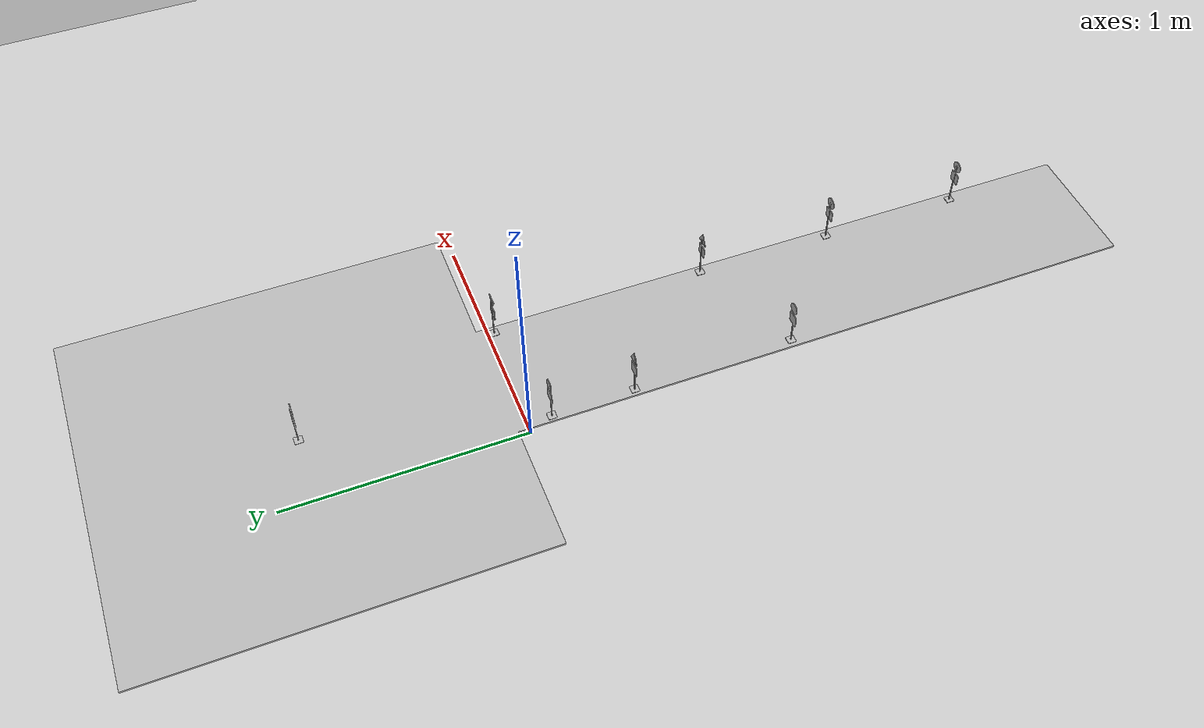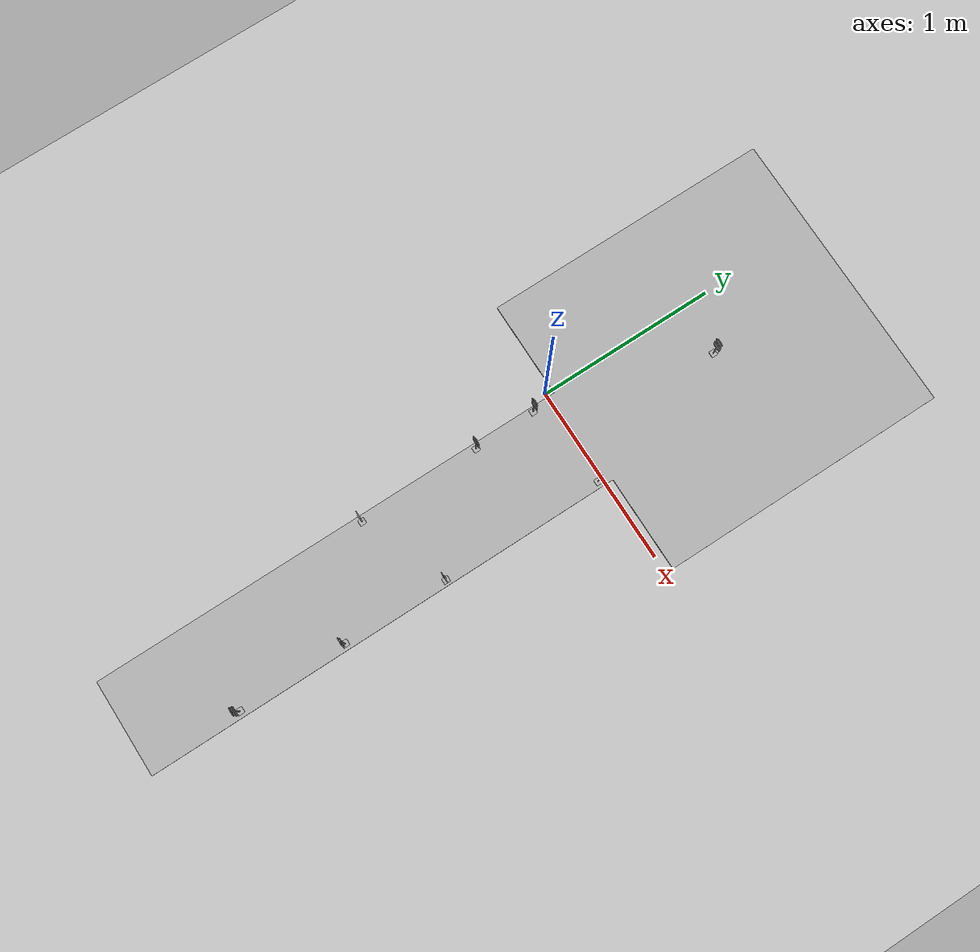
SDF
<sdf version="1.6">
 <world name="default">
  <light name="sun" type="directional">
   <pose>0 0 10 0 -0 0</pose>
   <diffuse>0.8 0.8 0.8 1</diffuse>
   <specular>0.1 0.1 0.1 1</specular>
   <attenuation>
    <range>1000</range>
    <constant>0.9</constant>
    <linear>0.01</linear>
    <quadratic>0.001</quadratic>
   </attenuation>
   <direction>-0.5 0.5 -1</direction>
  </light>
  <model name="ground_plane">
   <static>1</static>
   <link name="link">
    <collision name="collision">
     <geometry><plane><normal>0 0 1</normal><size>100 100</size></plane></geometry>
     <surface><friction><ode><mu>100</mu><mu2>50</mu2></ode></friction></surface>
    </collision>
    <visual name="visual">
     <cast_shadows>0</cast_shadows>
     <geometry><plane><normal>0 0 1</normal><size>100 100</size></plane></geometry>
     <material>
      <script><uri>file://media/materials/scripts/gazebo.material</uri><name>Gazebo/Grey</name></script>
     </material>
    </visual>
   </link>
  </model>
  <gravity>0 0 -9.8</gravity>
  <magnetic_field>6e-06 2.3e-05 -4.2e-05</magnetic_field>
  <atmosphere type="adiabatic"/>
  <physics name="default_physics" default="0" type="ode">
   <max_step_size>0.001</max_step_size>
   <real_time_factor>1</real_time_factor>
   <real_time_update_rate>1000</real_time_update_rate>
  </physics>
  <scene><ambient>0.4 0.4 0.4 1</ambient><background>0.7 0.7 0.7 1</background><shadows>1</shadows></scene>
  <spherical_coordinates>
   <surface_model>EARTH_WGS84</surface_model>
   <latitude_deg>0</latitude_deg>
   <longitude_deg>0</longitude_deg>
   <elevation>0</elevation>
   <heading_deg>0</heading_deg>
  </spherical_coordinates>
  <model name="city_0">
   <pose>0.341481 -0.258466 -3.7e-05 -1.2e-05 6.9e-05 -0.001334</pose>
   <link name="city::link_0">
    <inertial>
     <mass>5</mass>
     <inertia>
      <ixx>0.166667</ixx>
      <ixy>0</ixy>
      <ixz>0</ixz>
      <iyy>0.166667</iyy>
      <iyz>0</iyz>
      <izz>0.166667</izz>
     </inertia>
    </inertial>
    <visual name="visual">
     <geometry><mesh><uri>file://models/stl/City/city.dae</uri><scale>1 1 1</scale></mesh></geometry>
     <material><shader type="vertex"><normal_map>__default__</normal_map></shader></material>
    </visual>
    <collision name="collision_1">
     <pose>-0.06 -1.05 0 0 -0 0</pose>
     <geometry><box><size>0.54 2.71 0.01</size></box></geometry>
     <surface>
      <friction>
       <ode><mu>1</mu><mu2>1</mu2><fdir1>0 0 0</fdir1><slip1>0</slip1><slip2>0</slip2></ode>
       <torsional>
        <coefficient>1</coefficient>
        <patch_radius>0</patch_radius>
        <surface_radius>0</surface_radius>
        <use_patch_radius>1</use_patch_radius>
        <ode><slip>0</slip></ode>
       </torsional>
      </friction>
      <bounce><restitution_coefficient>0</restitution_coefficient><threshold>1e+06</threshold></bounce>
      <contact>
       <collide_without_contact>0</collide_without_contact>
       <collide_without_contact_bitmask>1</collide_without_contact_bitmask>
       <collide_bitmask>1</collide_bitmask>
       <ode>
        <soft_cfm>0</soft_cfm>
        <soft_erp>0.2</soft_erp>
        <kp>1e+13</kp>
        <kd>1</kd>
        <max_vel>0.01</max_vel>
        <min_depth>0</min_depth>
       </ode>
       <bullet>
        <split_impulse>1</split_impulse>
        <split_impulse_penetration_threshold>-0.01</split_impulse_penetration_threshold>
        <soft_cfm>0</soft_cfm>
        <soft_erp>0.2</soft_erp>
        <kp>1e+13</kp>
        <kd>1</kd>
       </bullet>
      </contact>
     </surface>
    </collision>
    <collision name="collision">
     <pose>-0.06 1.11 0 0 -0 0</pose>
     <geometry><box><size>1.62 1.62 0.01</size></box></geometry>
     <surface>
      <friction>
       <ode><mu>1</mu><mu2>1</mu2><fdir1>0 0 0</fdir1><slip1>0</slip1><slip2>0</slip2></ode>
       <torsional>
        <coefficient>1</coefficient>
        <patch_radius>0</patch_radius>
        <surface_radius>0</surface_radius>
        <use_patch_radius>1</use_patch_radius>
        <ode><slip>0</slip></ode>
       </torsional>
      </friction>
      <bounce><restitution_coefficient>0</restitution_coefficient><threshold>1e+06</threshold></bounce>
      <contact>
       <collide_without_contact>0</collide_without_contact>
       <collide_without_contact_bitmask>1</collide_without_contact_bitmask>
       <collide_bitmask>1</collide_bitmask>
       <ode>
        <soft_cfm>0</soft_cfm>
        <soft_erp>0.2</soft_erp>
        <kp>1e+13</kp>
        <kd>1</kd>
        <max_vel>0.01</max_vel>
        <min_depth>0</min_depth>
       </ode>
       <bullet>
        <split_impulse>1</split_impulse>
        <split_impulse_penetration_threshold>-0.01</split_impulse_penetration_threshold>
        <soft_cfm>0</soft_cfm>
        <soft_erp>0.2</soft_erp>
        <kp>1e+13</kp>
        <kd>1</kd>
       </bullet>
      </contact>
     </surface>
    </collision>
   </link>
   <static>1</static>
  </model>
  <model name="velocidad40_aruco">
   <link name="link_22">
    <inertial>
     <mass>0.02</mass>
     <inertia>
      <ixx>0.166667</ixx>
      <ixy>0</ixy>
      <ixz>0</ixz>
      <iyy>0.166667</iyy>
      <iyz>0</iyz>
      <izz>0.166667</izz>
     </inertia>
    </inertial>
    <visual name="visual">
     <geometry>
      <mesh><uri>file://models/stl/SENALES_ARUCOS/VELOCIDAD40/velo40_aruco.dae</uri><scale>1 1 1</scale></mesh>
     </geometry>
    </visual>
    <collision name="collision">
     <geometry>
      <mesh><uri>file://models/stl/SENALES_ARUCOS/VELOCIDAD40/velo40_aruco.dae</uri><scale>1 1 1</scale></mesh>
     </geometry>
     <surface>
      <friction>
       <ode><mu>1</mu><mu2>1</mu2><fdir1>0 0 0</fdir1><slip1>0</slip1><slip2>0</slip2></ode>
       <torsional>
        <coefficient>1</coefficient>
        <patch_radius>0</patch_radius>
        <surface_radius>0</surface_radius>
        <use_patch_radius>1</use_patch_radius>
        <ode><slip>0</slip></ode>
       </torsional>
      </friction>
      <bounce><restitution_coefficient>0</restitution_coefficient><threshold>1e+06</threshold></bounce>
      <contact>
       <collide_without_contact>0</collide_without_contact>
       <collide_without_contact_bitmask>1</collide_without_contact_bitmask>
       <collide_bitmask>1</collide_bitmask>
       <ode>
        <soft_cfm>0</soft_cfm>
        <soft_erp>0.2</soft_erp>
        <kp>1e+13</kp>
        <kd>1</kd>
        <max_vel>0.01</max_vel>
        <min_depth>0</min_depth>
       </ode>
       <bullet>
        <split_impulse>1</split_impulse>
        <split_impulse_penetration_threshold>-0.01</split_impulse_penetration_threshold>
        <soft_cfm>0</soft_cfm>
        <soft_erp>0.2</soft_erp>
        <kp>1e+13</kp>
        <kd>1</kd>
       </bullet>
      </contact>
     </surface>
    </collision>
   </link>
   <static>0</static>
   <pose>0.521753 -2.13682 0.004984 -4e-06 6.9e-05 -0</pose>
  </model>
  <model name="peatones_aruco">
   <link name="link_15">
    <inertial>
     <mass>0.02</mass>
     <inertia>
      <ixx>0.166667</ixx>
      <ixy>0</ixy>
      <ixz>0</ixz>
      <iyy>0.166667</iyy>
      <iyz>0</iyz>
      <izz>0.166667</izz>
     </inertia>
    </inertial>
    <visual name="visual">
     <geometry>
      <mesh><uri>file://models/stl/SENALES_ARUCOS/PEATONES/peatones_aruco.dae</uri><scale>1 1 1</scale></mesh>
     </geometry>
    </visual>
    <collision name="collision">
     <geometry>
      <mesh><uri>file://models/stl/SENALES_ARUCOS/PEATONES/peatones_aruco.dae</uri><scale>1 1 1</scale></mesh>
     </geometry>
     <surface>
      <friction>
       <ode><mu>1</mu><mu2>1</mu2><fdir1>0 0 0</fdir1><slip1>0</slip1><slip2>0</slip2></ode>
       <torsional>
        <coefficient>1</coefficient>
        <patch_radius>0</patch_radius>
        <surface_radius>0</surface_radius>
        <use_patch_radius>1</use_patch_radius>
        <ode><slip>0</slip></ode>
       </torsional>
      </friction>
      <bounce><restitution_coefficient>0</restitution_coefficient><threshold>1e+06</threshold></bounce>
      <contact>
       <collide_without_contact>0</collide_without_contact>
       <collide_without_contact_bitmask>1</collide_without_contact_bitmask>
       <collide_bitmask>1</collide_bitmask>
       <ode>
        <soft_cfm>0</soft_cfm>
        <soft_erp>0.2</soft_erp>
        <kp>1e+13</kp>
        <kd>1</kd>
        <max_vel>0.01</max_vel>
        <min_depth>0</min_depth>
       </ode>
       <bullet>
        <split_impulse>1</split_impulse>
        <split_impulse_penetration_threshold>-0.01</split_impulse_penetration_threshold>
        <soft_cfm>0</soft_cfm>
        <soft_erp>0.2</soft_erp>
        <kp>1e+13</kp>
        <kd>1</kd>
       </bullet>
      </contact>
     </surface>
    </collision>
   </link>
   <static>0</static>
   <pose>0.527852 -0.942423 0.004959 -1.1e-05 6.7e-05 4e-06</pose>
  </model>
  <model name="ceda_aruco">
   <link name="link_9">
    <inertial>
     <mass>0.02</mass>
     <inertia>
      <ixx>0.166667</ixx>
      <ixy>0</ixy>
      <ixz>0</ixz>
      <iyy>0.166667</iyy>
      <iyz>0</iyz>
      <izz>0.166667</izz>
     </inertia>
    </inertial>
    <visual name="visual">
     <geometry>
      <mesh><uri>file://models/stl/SENALES_ARUCOS/CEDA/ceda_aruco.dae</uri><scale>1 1 1</scale></mesh>
     </geometry>
    </visual>
    <collision name="collision">
     <geometry>
      <mesh><uri>file://models/stl/SENALES_ARUCOS/CEDA/ceda_aruco.dae</uri><scale>1 1 1</scale></mesh>
     </geometry>
     <surface>
      <friction>
       <ode><mu>1</mu><mu2>1</mu2><fdir1>0 0 0</fdir1><slip1>0</slip1><slip2>0</slip2></ode>
       <torsional>
        <coefficient>1</coefficient>
        <patch_radius>0</patch_radius>
        <surface_radius>0</surface_radius>
        <use_patch_radius>1</use_patch_radius>
        <ode><slip>0</slip></ode>
       </torsional>
      </friction>
      <bounce><restitution_coefficient>0</restitution_coefficient><threshold>1e+06</threshold></bounce>
      <contact>
       <collide_without_contact>0</collide_without_contact>
       <collide_without_contact_bitmask>1</collide_without_contact_bitmask>
       <collide_bitmask>1</collide_bitmask>
       <ode>
        <soft_cfm>0</soft_cfm>
        <soft_erp>0.2</soft_erp>
        <kp>1e+13</kp>
        <kd>1</kd>
        <max_vel>0.01</max_vel>
        <min_depth>0</min_depth>
       </ode>
       <bullet>
        <split_impulse>1</split_impulse>
        <split_impulse_penetration_threshold>-0.01</split_impulse_penetration_threshold>
        <soft_cfm>0</soft_cfm>
        <soft_erp>0.2</soft_erp>
        <kp>1e+13</kp>
        <kd>1</kd>
       </bullet>
      </contact>
     </surface>
    </collision>
   </link>
   <static>0</static>
   <pose>0.52614 -0.026962 0.004948 -6e-06 6.6e-05 0</pose>
  </model>
  <model name="rotonda_aruco">
   <link name="link_18">
    <inertial>
     <mass>0.02</mass>
     <inertia>
      <ixx>0.166667</ixx>
      <ixy>0</ixy>
      <ixz>0</ixz>
      <iyy>0.166667</iyy>
      <iyz>0</iyz>
      <izz>0.166667</izz>
     </inertia>
    </inertial>
    <visual name="visual">
     <geometry>
      <mesh><uri>file://models/stl/SENALES_ARUCOS/ROTONDA/rotonda_aruco.dae</uri><scale>1 1 1</scale></mesh>
     </geometry>
    </visual>
    <collision name="collision">
     <geometry>
      <mesh><uri>file://models/stl/SENALES_ARUCOS/ROTONDA/rotonda_aruco.dae</uri><scale>1 1 1</scale></mesh>
     </geometry>
     <surface>
      <friction>
       <ode><mu>1</mu><mu2>1</mu2><fdir1>0 0 0</fdir1><slip1>0</slip1><slip2>0</slip2></ode>
       <torsional>
        <coefficient>1</coefficient>
        <patch_radius>0</patch_radius>
        <surface_radius>0</surface_radius>
        <use_patch_radius>1</use_patch_radius>
        <ode><slip>0</slip></ode>
       </torsional>
      </friction>
      <bounce><restitution_coefficient>0</restitution_coefficient><threshold>1e+06</threshold></bounce>
      <contact>
       <collide_without_contact>0</collide_without_contact>
       <collide_without_contact_bitmask>1</collide_without_contact_bitmask>
       <collide_bitmask>1</collide_bitmask>
       <ode>
        <soft_cfm>0</soft_cfm>
        <soft_erp>0.2</soft_erp>
        <kp>1e+13</kp>
        <kd>1</kd>
        <max_vel>0.01</max_vel>
        <min_depth>0</min_depth>
       </ode>
       <bullet>
        <split_impulse>1</split_impulse>
        <split_impulse_penetration_threshold>-0.01</split_impulse_penetration_threshold>
        <soft_cfm>0</soft_cfm>
        <soft_erp>0.2</soft_erp>
        <kp>1e+13</kp>
        <kd>1</kd>
       </bullet>
      </contact>
     </surface>
    </collision>
   </link>
   <static>0</static>
   <pose>0.290237 0.844595 0.004944 -9e-06 6.8e-05 0</pose>
  </model>
  <model name="velocidad40_aruco_0">
   <link name="link_22">
    <inertial>
     <mass>0.02</mass>
     <inertia>
      <ixx>0.166667</ixx>
      <ixy>0</ixy>
      <ixz>0</ixz>
      <iyy>0.166667</iyy>
      <iyz>0</iyz>
      <izz>0.166667</izz>
     </inertia>
    </inertial>
    <visual name="visual">
     <geometry>
      <mesh><uri>file://models/stl/SENALES_ARUCOS/VELOCIDAD40/velo40_aruco.dae</uri><scale>1 1 1</scale></mesh>
     </geometry>
    </visual>
    <collision name="collision">
     <geometry>
      <mesh><uri>file://models/stl/SENALES_ARUCOS/VELOCIDAD40/velo40_aruco.dae</uri><scale>1 1 1</scale></mesh>
     </geometry>
     <surface>
      <friction>
       <ode><mu>1</mu><mu2>1</mu2><fdir1>0 0 0</fdir1><slip1>0</slip1><slip2>0</slip2></ode>
       <torsional>
        <coefficient>1</coefficient>
        <patch_radius>0</patch_radius>
        <surface_radius>0</surface_radius>
        <use_patch_radius>1</use_patch_radius>
        <ode><slip>0</slip></ode>
       </torsional>
      </friction>
      <bounce><restitution_coefficient>0</restitution_coefficient><threshold>1e+06</threshold></bounce>
      <contact>
       <collide_without_contact>0</collide_without_contact>
       <collide_without_contact_bitmask>1</collide_without_contact_bitmask>
       <collide_bitmask>1</collide_bitmask>
       <ode>
        <soft_cfm>0</soft_cfm>
        <soft_erp>0.2</soft_erp>
        <kp>1e+13</kp>
        <kd>1</kd>
        <max_vel>0.01</max_vel>
        <min_depth>0</min_depth>
       </ode>
       <bullet>
        <split_impulse>1</split_impulse>
        <split_impulse_penetration_threshold>-0.01</split_impulse_penetration_threshold>
        <soft_cfm>0</soft_cfm>
        <soft_erp>0.2</soft_erp>
        <kp>1e+13</kp>
        <kd>1</kd>
       </bullet>
      </contact>
     </surface>
    </collision>
   </link>
   <static>0</static>
   <pose>0.049913 -1.13545 0.004963 1.6e-05 -7e-05 -3.14073</pose>
  </model>
  <model name="peatones_aruco_0">
   <link name="link_15">
    <inertial>
     <mass>0.02</mass>
     <inertia>
      <ixx>0.166667</ixx>
      <ixy>0</ixy>
      <ixz>0</ixz>
      <iyy>0.166667</iyy>
      <iyz>0</iyz>
      <izz>0.166667</izz>
     </inertia>
    </inertial>
    <visual name="visual">
     <geometry>
      <mesh><uri>file://models/stl/SENALES_ARUCOS/PEATONES/peatones_aruco.dae</uri><scale>1 1 1</scale></mesh>
     </geometry>
    </visual>
    <collision name="collision">
     <geometry>
      <mesh><uri>file://models/stl/SENALES_ARUCOS/PEATONES/peatones_aruco.dae</uri><scale>1 1 1</scale></mesh>
     </geometry>
     <surface>
      <friction>
       <ode><mu>1</mu><mu2>1</mu2><fdir1>0 0 0</fdir1><slip1>0</slip1><slip2>0</slip2></ode>
       <torsional>
        <coefficient>1</coefficient>
        <patch_radius>0</patch_radius>
        <surface_radius>0</surface_radius>
        <use_patch_radius>1</use_patch_radius>
        <ode><slip>0</slip></ode>
       </torsional>
      </friction>
      <bounce><restitution_coefficient>0</restitution_coefficient><threshold>1e+06</threshold></bounce>
      <contact>
       <collide_without_contact>0</collide_without_contact>
       <collide_without_contact_bitmask>1</collide_without_contact_bitmask>
       <collide_bitmask>1</collide_bitmask>
       <ode>
        <soft_cfm>0</soft_cfm>
        <soft_erp>0.2</soft_erp>
        <kp>1e+13</kp>
        <kd>1</kd>
        <max_vel>0.01</max_vel>
        <min_depth>0</min_depth>
       </ode>
       <bullet>
        <split_impulse>1</split_impulse>
        <split_impulse_penetration_threshold>-0.01</split_impulse_penetration_threshold>
        <soft_cfm>0</soft_cfm>
        <soft_erp>0.2</soft_erp>
        <kp>1e+13</kp>
        <kd>1</kd>
       </bullet>
      </contact>
     </surface>
    </collision>
   </link>
   <static>0</static>
   <pose>0.04722 -0.450322 0.004986 1.4e-05 -7.3e-05 -3.13247</pose>
  </model>
  <model name="velocidad20_aruco_0">
   <link name="link_21">
    <inertial>
     <mass>0.02</mass>
     <inertia>
      <ixx>0.166667</ixx>
      <ixy>0</ixy>
      <ixz>0</ixz>
      <iyy>0.166667</iyy>
      <iyz>0</iyz>
      <izz>0.166667</izz>
     </inertia>
    </inertial>
    <visual name="visual">
     <geometry>
      <mesh><uri>file://models/stl/SENALES_ARUCOS/VELOCIDAD20/velo20_aruco.dae</uri><scale>1 1 1</scale></mesh>
     </geometry>
    </visual>
    <collision name="collision">
     <geometry>
      <mesh><uri>file://models/stl/SENALES_ARUCOS/VELOCIDAD20/velo20_aruco.dae</uri><scale>1 1 1</scale></mesh>
     </geometry>
     <surface>
      <friction>
       <ode><mu>1</mu><mu2>1</mu2><fdir1>0 0 0</fdir1><slip1>0</slip1><slip2>0</slip2></ode>
       <torsional>
        <coefficient>1</coefficient>
        <patch_radius>0</patch_radius>
        <surface_radius>0</surface_radius>
        <use_patch_radius>1</use_patch_radius>
        <ode><slip>0</slip></ode>
       </torsional>
      </friction>
      <bounce><restitution_coefficient>0</restitution_coefficient><threshold>1e+06</threshold></bounce>
      <contact>
       <collide_without_contact>0</collide_without_contact>
       <collide_without_contact_bitmask>1</collide_without_contact_bitmask>
       <collide_bitmask>1</collide_bitmask>
       <ode>
        <soft_cfm>0</soft_cfm>
        <soft_erp>0.2</soft_erp>
        <kp>1e+13</kp>
        <kd>1</kd>
        <max_vel>0.01</max_vel>
        <min_depth>0</min_depth>
       </ode>
       <bullet>
        <split_impulse>1</split_impulse>
        <split_impulse_penetration_threshold>-0.01</split_impulse_penetration_threshold>
        <soft_cfm>0</soft_cfm>
        <soft_erp>0.2</soft_erp>
        <kp>1e+13</kp>
        <kd>1</kd>
       </bullet>
      </contact>
     </surface>
    </collision>
   </link>
   <static>0</static>
   <pose>0.043993 -0.100918 0.004967 1.5e-05 -7e-05 3.12545</pose>
  </model>
  <model name="velocidad20_aruco">
   <link name="link_21">
    <inertial>
     <mass>0.02</mass>
     <inertia>
      <ixx>0.166667</ixx>
      <ixy>0</ixy>
      <ixz>0</ixz>
      <iyy>0.166667</iyy>
      <iyz>0</iyz>
      <izz>0.166667</izz>
     </inertia>
    </inertial>
    <visual name="visual">
     <geometry>
      <mesh><uri>file://models/stl/SENALES_ARUCOS/VELOCIDAD20/velo20_aruco.dae</uri><scale>1 1 1</scale></mesh>
     </geometry>
    </visual>
    <collision name="collision">
     <geometry>
      <mesh><uri>file://models/stl/SENALES_ARUCOS/VELOCIDAD20/velo20_aruco.dae</uri><scale>1 1 1</scale></mesh>
     </geometry>
     <surface>
      <friction>
       <ode><mu>1</mu><mu2>1</mu2><fdir1>0 0 0</fdir1><slip1>0</slip1><slip2>0</slip2></ode>
       <torsional>
        <coefficient>1</coefficient>
        <patch_radius>0</patch_radius>
        <surface_radius>0</surface_radius>
        <use_patch_radius>1</use_patch_radius>
        <ode><slip>0</slip></ode>
       </torsional>
      </friction>
      <bounce><restitution_coefficient>0</restitution_coefficient><threshold>1e+06</threshold></bounce>
      <contact>
       <collide_without_contact>0</collide_without_contact>
       <collide_without_contact_bitmask>1</collide_without_contact_bitmask>
       <collide_bitmask>1</collide_bitmask>
       <ode>
        <soft_cfm>0</soft_cfm>
        <soft_erp>0.2</soft_erp>
        <kp>1e+13</kp>
        <kd>1</kd>
        <max_vel>0.01</max_vel>
        <min_depth>0</min_depth>
       </ode>
       <bullet>
        <split_impulse>1</split_impulse>
        <split_impulse_penetration_threshold>-0.01</split_impulse_penetration_threshold>
        <soft_cfm>0</soft_cfm>
        <soft_erp>0.2</soft_erp>
        <kp>1e+13</kp>
        <kd>1</kd>
       </bullet>
      </contact>
     </surface>
    </collision>
   </link>
   <static>0</static>
   <pose>0.521984 -1.5309 0.005296 8e-06 9.3e-05 0</pose>
  </model>
 </world>
</sdf>
